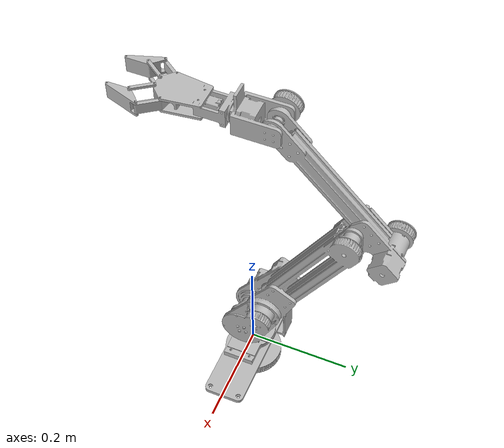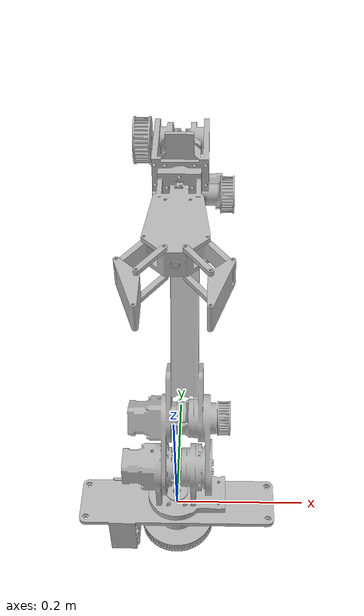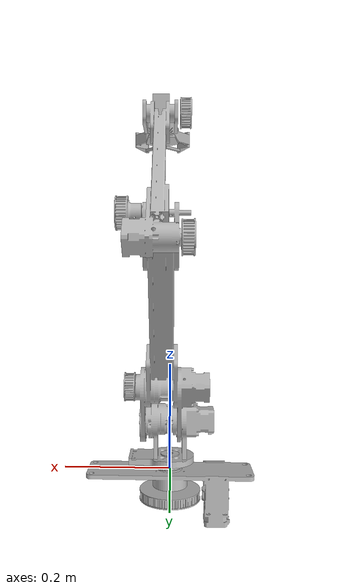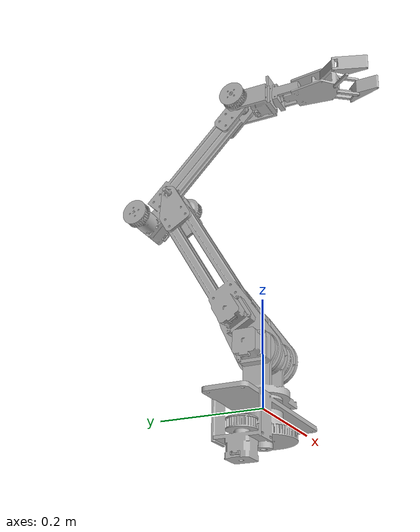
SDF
<?xml version="1.0" ?>
<sdf version="1.8">
    <!--Weight Properties are inaccurate!-->
    <model name='atom_arm' canonical_link='STEM'>

        <!-- LINKS -->

        <link name='STEM'>
            <pose relative_to='__model__'>0 0 0 0 0 0</pose>
            <inertial>
                <mass>1.14395</mass>
                <inertia>
                    <ixx>0.095329</ixx>
                    <ixy>0</ixy>
                    <ixz>0</ixz>
                    <iyy>0.381317</iyy>
                    <iyz>0</iyz>
                    <izz>0.476646</izz>
                </inertia>
            </inertial>
            <visual name='visual'>
                <geometry>
                    <mesh>

                        <uri>models/atom/Arm/STEM.obj</uri>
                        <scale>1 1 1</scale>

                    </mesh>
                </geometry>
            </visual>

            <collision name='collision'>
                <geometry>
                    <box>
                        <size>0.2 0.2 0.2</size>
                    </box>
                </geometry>
            </collision>
        </link>

        <link name='A1'>
            <pose relative_to='STEM'>0 0 0.016 0 0 0</pose>
            <inertial>
                <mass>1.14395</mass>
                <inertia>
                    <ixx>0.095329</ixx>
                    <ixy>0</ixy>
                    <ixz>0</ixz>
                    <iyy>0.381317</iyy>
                    <iyz>0</iyz>
                    <izz>0.476646</izz>
                </inertia>
            </inertial>
            <visual name='visual'>
                <geometry>
                    <mesh>

                        <uri>models/atom/Arm/A1.obj</uri>
                        <scale>1 1 1</scale>

                    </mesh>
                </geometry>
            </visual>
        </link>

        <link name='A2'>
            <pose relative_to='A1'>0.016 0 0.08 0 0 0</pose>
            <inertial>
                <mass>1.14395</mass>
                <inertia>
                    <ixx>0.095329</ixx>
                    <ixy>0</ixy>
                    <ixz>0</ixz>
                    <iyy>0.381317</iyy>
                    <iyz>0</iyz>
                    <izz>0.476646</izz>
                </inertia>
            </inertial>
            <visual name='visual'>
                <geometry>
                    <mesh>

                        <uri>models/atom/Arm/A2.obj</uri>
                        <scale>1 1 1</scale>

                    </mesh>
                </geometry>
            </visual>
        </link>

        <link name='A3'>
            <pose relative_to='A2'>0.0021 0.19874  0.33612 0 0 0</pose>
            <inertial>
                <mass>1.14395</mass>
                <inertia>
                    <ixx>0.095329</ixx>
                    <ixy>0</ixy>
                    <ixz>0</ixz>
                    <iyy>0.381317</iyy>
                    <iyz>0</iyz>
                    <izz>0.476646</izz>
                </inertia>
            </inertial>
            <visual name='visual'>
                <geometry>
                    <mesh>

                        <uri>models/atom/Arm/A3.obj</uri>
                        <scale>1 1 1</scale>

                    </mesh>
                </geometry>
            </visual>
        </link>

        <link name='A4'>
            <pose relative_to='A3'>0 -0.1469 0.21224 0 0 0</pose>
            <inertial>
                <mass>1.14395</mass>
                <inertia>
                    <ixx>0.095329</ixx>
                    <ixy>0</ixy>
                    <ixz>0</ixz>
                    <iyy>0.381317</iyy>
                    <iyz>0</iyz>
                    <izz>0.476646</izz>
                </inertia>
            </inertial>
            <visual name='visual'>
                <geometry>
                    <mesh>

                        <uri>models/atom/Arm/A4.obj</uri>
                        <scale>1 1 1</scale>

                    </mesh>
                </geometry>
            </visual>
        </link>

        <link name='A5'>
            <pose relative_to='A4'>0 -0.068 0 0 0 0</pose>
            <inertial>
                <mass>1.14395</mass>
                <inertia>
                    <ixx>0.095329</ixx>
                    <ixy>0</ixy>
                    <ixz>0</ixz>
                    <iyy>0.381317</iyy>
                    <iyz>0</iyz>
                    <izz>0.476646</izz>
                </inertia>
            </inertial>
            <visual name='visual'>
                <geometry>
                    <mesh>

                        <uri>models/atom/Arm/A5.obj</uri>
                        <scale>1 1 1</scale>

                    </mesh>
                </geometry>
            </visual>
        </link>

        <link name='G_R1'>
            <pose relative_to='A5'>-0.03 -0.116 0 0 0 0</pose>
            <inertial>
                <mass>1.14395</mass>
                <inertia>
                    <ixx>0.095329</ixx>
                    <ixy>0</ixy>
                    <ixz>0</ixz>
                    <iyy>0.381317</iyy>
                    <iyz>0</iyz>
                    <izz>0.476646</izz>
                </inertia>
            </inertial>
            <visual name='visual'>
                <geometry>
                    <mesh>

                        <uri>models/atom/Arm/G_R1.obj</uri>
                        <scale>1 1 1</scale>

                    </mesh>
                </geometry>
            </visual>
        </link>

        <link name='G_L1'>
            <pose relative_to='A5'>0.03 -0.116 0 0 0 0</pose>
            <inertial>
                <mass>1.14395</mass>
                <inertia>
                    <ixx>0.095329</ixx>
                    <ixy>0</ixy>
                    <ixz>0</ixz>
                    <iyy>0.381317</iyy>
                    <iyz>0</iyz>
                    <izz>0.476646</izz>
                </inertia>
            </inertial>
            <visual name='visual'>
                <geometry>
                    <mesh>

                        <uri>models/atom/Arm/G_L1.obj</uri>
                        <scale>1 1 1</scale>

                    </mesh>
                </geometry>
            </visual>
        </link>

        <link name='G_R2'>
            <pose relative_to='A5'>-0.01 -0.136 0 0 0 0</pose>
            <inertial>
                <mass>1.14395</mass>
                <inertia>
                    <ixx>0.095329</ixx>
                    <ixy>0</ixy>
                    <ixz>0</ixz>
                    <iyy>0.381317</iyy>
                    <iyz>0</iyz>
                    <izz>0.476646</izz>
                </inertia>
            </inertial>
            <visual name='visual'>
                <geometry>
                    <mesh>

                        <uri>models/atom/Arm/G_R2.obj</uri>
                        <scale>1 1 1</scale>

                    </mesh>
                </geometry>
            </visual>
        </link>

        <link name='G_L2'>
            <pose relative_to='A5'>0.01 -0.136 0 0 0 0</pose>
            <inertial>
                <mass>1.14395</mass>
                <inertia>
                    <ixx>0.095329</ixx>
                    <ixy>0</ixy>
                    <ixz>0</ixz>
                    <iyy>0.381317</iyy>
                    <iyz>0</iyz>
                    <izz>0.476646</izz>
                </inertia>
            </inertial>
            <visual name='visual'>
                <geometry>
                    <mesh>

                        <uri>models/atom/Arm/G_L2.obj</uri>
                        <scale>1 1 1</scale>

                    </mesh>
                </geometry>
            </visual>
        </link>

        <link name='RP'>
            <pose relative_to='G_R1'>-0.02349 -0.03238 0 0 0 0</pose>
            <inertial>
                <mass>1.14395</mass>
                <inertia>
                    <ixx>0.095329</ixx>
                    <ixy>0</ixy>
                    <ixz>0</ixz>
                    <iyy>0.381317</iyy>
                    <iyz>0</iyz>
                    <izz>0.476646</izz>
                </inertia>
            </inertial>
            <visual name='visual'>
                <geometry>
                    <mesh>

                        <uri>models/atom/Arm/RP.obj</uri>
                        <scale>1 1 1</scale>

                    </mesh>
                </geometry>
            </visual>
        </link>

        <link name='LP'>
            <pose relative_to='G_L1'>0.02349 -0.03238 0 0 0 0</pose>
            <inertial>
                <mass>1.14395</mass>
                <inertia>
                    <ixx>0.095329</ixx>
                    <ixy>0</ixy>
                    <ixz>0</ixz>
                    <iyy>0.381317</iyy>
                    <iyz>0</iyz>
                    <izz>0.476646</izz>
                </inertia>
            </inertial>
            <visual name='visual'>
                <geometry>
                    <mesh>

                        <uri>models/atom/Arm/LP.obj</uri>
                        <scale>1 1 1</scale>

                    </mesh>
                </geometry>
            </visual>
        </link>

        <!-- JOINTS -->
        <joint name="STEM_A1" type="revolute">
            <parent>STEM</parent>
            <child>A1</child>
            <axis>
                <xyz>0 0 1</xyz>
            </axis>
        </joint>
        <joint name="A1_A2" type="revolute">
            <parent>A1</parent>
            <child>A2</child>
            <axis>
                <xyz>1 0 0</xyz>
            </axis>
        </joint>
        <joint name="A2_A3" type="revolute">
            <parent>A2</parent>
            <child>A3</child>
            <axis>
                <xyz>1 0 0</xyz>
            </axis>
        </joint>
        <joint name="A3_A4" type="revolute">
            <parent>A3</parent>
            <child>A4</child>
            <axis>
                <xyz>1 0 0</xyz>
            </axis>
        </joint>
        <joint name="A4_A5" type="revolute">
            <parent>A4</parent>
            <child>A5</child>
            <axis>
                <xyz>1 0 0</xyz>
            </axis>
        </joint>
        <joint name="A5_GL1" type="fixed"> <!--temp fixed-->
            <parent>A5</parent>
            <child>G_L1</child>
            <axis>
                <xyz>0 0 1</xyz>
            </axis>
        </joint>
        <joint name="A5_GR1" type="fixed"> <!--temp fixed-->
            <parent>A5</parent>
            <child>G_R1</child>
            <axis>
                <xyz>0 0 1</xyz>
            </axis>
        </joint>
        <joint name="A5_GL2" type="fixed"> <!--temp fixed-->
            <parent>A5</parent>
            <child>G_L2</child>
            <axis>
                <xyz>0 0 1</xyz>
            </axis>
        </joint>
        <joint name="A5_GR2" type="fixed"> <!--temp fixed-->
            <parent>A5</parent>
            <child>G_R2</child>
            <axis>
                <xyz>0 0 1</xyz>
            </axis>
        </joint>
        <joint name="GL1_LP" type="fixed"> <!--temp fixed-->
            <parent>G_L1</parent>
            <child>LP</child>
            <axis>
                <xyz>0 0 1</xyz>
            </axis>
        </joint>
        <joint name="GR1_RP" type="fixed"> <!--temp fixed-->
            <parent>G_R1</parent>
            <child>RP</child>
            <axis>
                <xyz>0 0 1</xyz>
            </axis>
        </joint>
        <!-- SENSORS -->

        <!-- CAMERA -->
        <link name="arm_camera">
            <pose relative_to="STEM">0.01316 0.0139 0.71186 0 0 -1.5708</pose>

            <sensor name="camera_sensor" type="camera">
                <always_on>true</always_on>
                <update_rate>30</update_rate>
                <visualize>true</visualize>

                <camera>
                <horizontal_fov>1.047</horizontal_fov> <!--60deg-->

                <image>
                    <width>640</width>
                    <height>480</height>
                    <format>R8G8B8</format>
                </image>

                <noise>
                    <type>gaussian</type>
                    <mean>0.0</mean>
                    <stddev>0.01</stddev>
                </noise>

                <clip>
                    <near>0.1</near>
                    <far>100</far>
                </clip>
                </camera>

                <topic>/rover/arm_camera/rgb</topic>
            </sensor>
        </link>
        <joint name="A4_arm_cam" type="fixed">
            <parent>A4</parent>
            <child>arm_camera</child>
        </joint>

        <!-- JOINT CONTROLLERS -->

        <plugin filename="ignition-gazebo-joint-controller-system"
            name="ignition::gazebo::systems::JointController">
            <joint_name>STEM_A1</joint_name>
            <p_gain>20.0</p_gain>     <!-- N·m per rad (approx) -->
            <d_gain>2.0</d_gain>      <!-- N·m·s per rad -->
            <i_gain>0.1</i_gain>      <!-- small integrator -->
            <i_min>-1.0</i_min>       <!-- clamp integral contribution (N·m) -->
            <i_max>1.0</i_max>
            <cmd_min>-1</cmd_min>
            <cmd_max>1</cmd_max>
        </plugin>
        <plugin filename="ignition-gazebo-joint-controller-system"
            name="ignition::gazebo::systems::JointController">
            <joint_name>A1_A2</joint_name>
            <p_gain>20.0</p_gain>     <!-- N·m per rad (approx) -->
            <d_gain>2.0</d_gain>      <!-- N·m·s per rad -->
            <i_gain>0.1</i_gain>      <!-- small integrator -->
            <i_min>-1.0</i_min>       <!-- clamp integral contribution (N·m) -->
            <i_max>1.0</i_max>
            <cmd_min>-1</cmd_min>
            <cmd_max>1</cmd_max>
        </plugin>
        <plugin filename="ignition-gazebo-joint-controller-system"
            name="ignition::gazebo::systems::JointController">
            <joint_name>A2_A3</joint_name>
            <p_gain>20.0</p_gain>     <!-- N·m per rad (approx) -->
            <d_gain>2.0</d_gain>      <!-- N·m·s per rad -->
            <i_gain>0.1</i_gain>      <!-- small integrator -->
            <i_min>-1.0</i_min>       <!-- clamp integral contribution (N·m) -->
            <i_max>1.0</i_max>
            <cmd_min>-1</cmd_min>
            <cmd_max>1</cmd_max>
        </plugin>
        <plugin filename="ignition-gazebo-joint-controller-system"
            name="ignition::gazebo::systems::JointController">
            <joint_name>A3_A4</joint_name>
            <p_gain>20.0</p_gain>     <!-- N·m per rad (approx) -->
            <d_gain>2.0</d_gain>      <!-- N·m·s per rad -->
            <i_gain>0.1</i_gain>      <!-- small integrator -->
            <i_min>-1.0</i_min>       <!-- clamp integral contribution (N·m) -->
            <i_max>1.0</i_max>
            <cmd_min>-1</cmd_min>
            <cmd_max>1</cmd_max>
        </plugin>
        <plugin filename="ignition-gazebo-joint-controller-system"
            name="ignition::gazebo::systems::JointController">
            <joint_name>A4_A5</joint_name>
            <p_gain>20.0</p_gain>     <!-- N·m per rad (approx) -->
            <d_gain>2.0</d_gain>      <!-- N·m·s per rad -->
            <i_gain>0.1</i_gain>      <!-- small integrator -->
            <i_min>-1.0</i_min>       <!-- clamp integral contribution (N·m) -->
            <i_max>1.0</i_max>
            <cmd_min>-1</cmd_min>
            <cmd_max>1</cmd_max>
        </plugin>

    </model>
</sdf>
